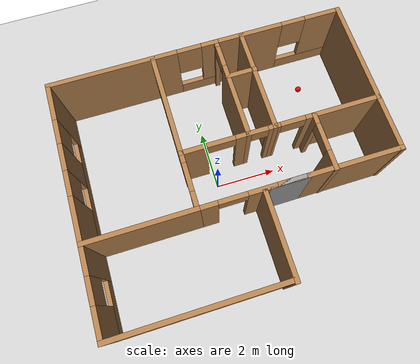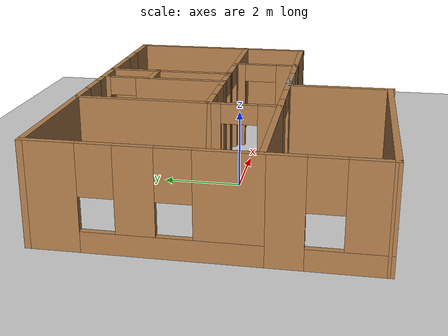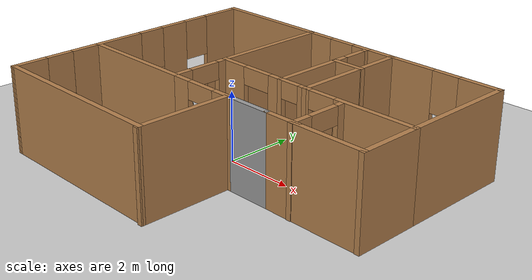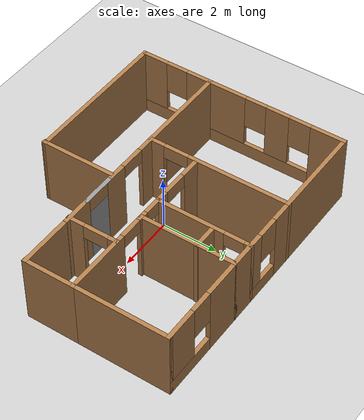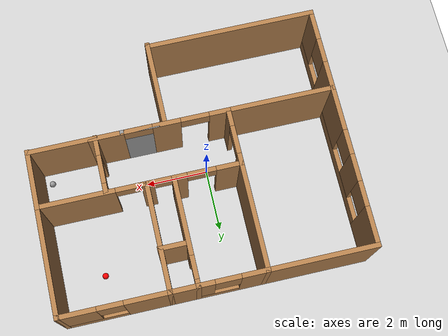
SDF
<sdf version="1.6">
 <world name="default">
  <model name="ground_plane">
   <static>1</static>
   <link name="link">
    <collision name="collision">
     <geometry><plane><normal>0 0 1</normal><size>100 100</size></plane></geometry>
     <surface><friction><ode><mu>100</mu><mu2>50</mu2></ode></friction></surface>
    </collision>
    <visual name="visual">
     <cast_shadows>0</cast_shadows>
     <geometry><plane><normal>0 0 1</normal><size>100 100</size></plane></geometry>
     <material>
      <script><uri>file://media/materials/scripts/gazebo.material</uri><name>Gazebo/Grey</name></script>
     </material>
    </visual>
   </link>
  </model>
  <model name="Building">
   <pose>0.53496 0.08529 0 0 -0 0</pose>
   <link name="Wall_0">
    <pose>-4.82496 1.34507 0 0 0 -1.5708</pose>
    <visual name="Wall_0_Visual_0">
     <pose>-1.98585 0 1.25 0 -0 0</pose>
     <geometry><box><size>1.27829 0.15 2.5</size></box></geometry>
     <material>
      <script><uri>file://media/materials/scripts/gazebo.material</uri><name>Gazebo/Wood</name></script>
      <ambient>1 1 1 1</ambient>
     </material>
     <meta><layer>0</layer></meta>
    </visual>
    <collision name="Wall_0_Collision_0">
     <geometry><box><size>1.27829 0.15 2.5</size></box></geometry>
     <pose>-1.98585 0 1.25 0 -0 0</pose>
    </collision>
    <visual name="Wall_0_Visual_1">
     <pose>0.639146 0 0.25 0 -0 0</pose>
     <geometry><box><size>3.97171 0.15 0.5</size></box></geometry>
     <material>
      <script><uri>file://media/materials/scripts/gazebo.material</uri><name>Gazebo/Wood</name></script>
      <ambient>1 1 1 1</ambient>
     </material>
     <meta><layer>0</layer></meta>
    </visual>
    <collision name="Wall_0_Collision_1">
     <geometry><box><size>3.97171 0.15 0.5</size></box></geometry>
     <pose>0.639146 0 0.25 0 -0 0</pose>
    </collision>
    <visual name="Wall_0_Visual_2">
     <pose>-0.109277 0 1.5 0 -0 0</pose>
     <geometry><box><size>0.874861 0.15 2</size></box></geometry>
     <material>
      <script><uri>file://media/materials/scripts/gazebo.material</uri><name>Gazebo/Wood</name></script>
      <ambient>1 1 1 1</ambient>
     </material>
     <meta><layer>0</layer></meta>
    </visual>
    <collision name="Wall_0_Collision_2">
     <geometry><box><size>0.874861 0.15 2</size></box></geometry>
     <pose>-0.109277 0 1.5 0 -0 0</pose>
    </collision>
    <visual name="Wall_0_Visual_3">
     <pose>1.87658 0 1.5 0 -0 0</pose>
     <geometry><box><size>1.49685 0.15 2</size></box></geometry>
     <material>
      <script><uri>file://media/materials/scripts/gazebo.material</uri><name>Gazebo/Wood</name></script>
      <ambient>1 1 1 1</ambient>
     </material>
     <meta><layer>0</layer></meta>
    </visual>
    <collision name="Wall_0_Collision_3">
     <geometry><box><size>1.49685 0.15 2</size></box></geometry>
     <pose>1.87658 0 1.5 0 -0 0</pose>
    </collision>
    <visual name="Wall_0_Visual_4">
     <pose>-0.946708 0 1.9 0 -0 0</pose>
     <geometry><box><size>0.8 0.15 1.2</size></box></geometry>
     <material>
      <script><uri>file://media/materials/scripts/gazebo.material</uri><name>Gazebo/Wood</name></script>
      <ambient>1 1 1 1</ambient>
     </material>
     <meta><layer>0</layer></meta>
    </visual>
    <collision name="Wall_0_Collision_4">
     <geometry><box><size>0.8 0.15 1.2</size></box></geometry>
     <pose>-0.946708 0 1.9 0 -0 0</pose>
    </collision>
    <visual name="Wall_0_Visual_5">
     <pose>0.728153 0 1.9 0 -0 0</pose>
     <geometry><box><size>0.8 0.15 1.2</size></box></geometry>
     <material>
      <script><uri>file://media/materials/scripts/gazebo.material</uri><name>Gazebo/Wood</name></script>
      <ambient>1 1 1 1</ambient>
     </material>
     <meta><layer>0</layer></meta>
    </visual>
    <collision name="Wall_0_Collision_5">
     <geometry><box><size>0.8 0.15 1.2</size></box></geometry>
     <pose>0.728153 0 1.9 0 -0 0</pose>
    </collision>
   </link>
   <link name="Wall_1">
    <collision name="Wall_1_Collision">
     <geometry><box><size>3.5 0.15 2.5</size></box></geometry>
     <pose>0 0 1.25 0 -0 0</pose>
    </collision>
    <visual name="Wall_1_Visual">
     <pose>0 0 1.25 0 -0 0</pose>
     <geometry><box><size>3.5 0.15 2.5</size></box></geometry>
     <material>
      <script><uri>file://media/materials/scripts/gazebo.material</uri><name>Gazebo/Wood</name></script>
      <ambient>1 1 1 1</ambient>
     </material>
     <meta><layer>0</layer></meta>
    </visual>
    <pose>-3.14996 -1.20493 0 0 -0 0</pose>
   </link>
   <link name="Wall_10">
    <collision name="Wall_10_Collision">
     <geometry><box><size>3.5 0.15 2.5</size></box></geometry>
     <pose>0 0 1.25 0 -0 0</pose>
    </collision>
    <visual name="Wall_10_Visual">
     <pose>0 0 1.25 0 -0 0</pose>
     <geometry><box><size>3.5 0.15 2.5</size></box></geometry>
     <material>
      <script><uri>file://media/materials/scripts/gazebo.material</uri><name>Gazebo/Wood</name></script>
      <ambient>1 1 1 1</ambient>
     </material>
     <meta><layer>0</layer></meta>
    </visual>
    <pose>1.47504 2.22007 0 0 0 -1.5708</pose>
   </link>
   <link name="Wall_11">
    <pose>1.05004 0.545074 0 0 -0 3.14159</pose>
    <visual name="Wall_11_Visual_0">
     <pose>-0.350457 0 1.25 0 -0 0</pose>
     <geometry><box><size>0.299085 0.15 2.5</size></box></geometry>
     <material>
      <script><uri>file://media/materials/scripts/gazebo.material</uri><name>Gazebo/Wood</name></script>
      <ambient>1 1 1 1</ambient>
     </material>
     <meta><layer>0</layer></meta>
    </visual>
    <collision name="Wall_11_Collision_0">
     <geometry><box><size>0.299085 0.15 2.5</size></box></geometry>
     <pose>-0.350457 0 1.25 0 -0 0</pose>
    </collision>
    <visual name="Wall_11_Visual_1">
     <pose>0.464543 0 1.25 0 -0 0</pose>
     <geometry><box><size>0.070915 0.15 2.5</size></box></geometry>
     <material>
      <script><uri>file://media/materials/scripts/gazebo.material</uri><name>Gazebo/Wood</name></script>
      <ambient>1 1 1 1</ambient>
     </material>
     <meta><layer>0</layer></meta>
    </visual>
    <collision name="Wall_11_Collision_1">
     <geometry><box><size>0.070915 0.15 2.5</size></box></geometry>
     <pose>0.464543 0 1.25 0 -0 0</pose>
    </collision>
    <visual name="Wall_11_Visual_2">
     <pose>0.114085 0 2.25 0 -0 0</pose>
     <geometry><box><size>0.63 0.15 0.5</size></box></geometry>
     <material>
      <script><uri>file://media/materials/scripts/gazebo.material</uri><name>Gazebo/Wood</name></script>
      <ambient>1 1 1 1</ambient>
     </material>
     <meta><layer>0</layer></meta>
    </visual>
    <collision name="Wall_11_Collision_2">
     <geometry><box><size>0.63 0.15 0.5</size></box></geometry>
     <pose>0.114085 0 2.25 0 -0 0</pose>
    </collision>
   </link>
   <link name="Wall_13">
    <pose>3.15004 3.89507 0 0 -0 0</pose>
    <visual name="Wall_13_Visual_0">
     <pose>-1.01972 0 1.25 0 -0 0</pose>
     <geometry><box><size>1.46055 0.15 2.5</size></box></geometry>
     <material>
      <script><uri>file://media/materials/scripts/gazebo.material</uri><name>Gazebo/Wood</name></script>
      <ambient>1 1 1 1</ambient>
     </material>
     <meta><layer>0</layer></meta>
    </visual>
    <collision name="Wall_13_Collision_0">
     <geometry><box><size>1.46055 0.15 2.5</size></box></geometry>
     <pose>-1.01972 0 1.25 0 -0 0</pose>
    </collision>
    <visual name="Wall_13_Visual_1">
     <pose>0.730276 0 0.25 0 -0 0</pose>
     <geometry><box><size>2.03945 0.15 0.5</size></box></geometry>
     <material>
      <script><uri>file://media/materials/scripts/gazebo.material</uri><name>Gazebo/Wood</name></script>
      <ambient>1 1 1 1</ambient>
     </material>
     <meta><layer>0</layer></meta>
    </visual>
    <collision name="Wall_13_Collision_1">
     <geometry><box><size>2.03945 0.15 0.5</size></box></geometry>
     <pose>0.730276 0 0.25 0 -0 0</pose>
    </collision>
    <visual name="Wall_13_Visual_2">
     <pose>1.13028 0 1.5 0 -0 0</pose>
     <geometry><box><size>1.23945 0.15 2</size></box></geometry>
     <material>
      <script><uri>file://media/materials/scripts/gazebo.material</uri><name>Gazebo/Wood</name></script>
      <ambient>1 1 1 1</ambient>
     </material>
     <meta><layer>0</layer></meta>
    </visual>
    <collision name="Wall_13_Collision_2">
     <geometry><box><size>1.23945 0.15 2</size></box></geometry>
     <pose>1.13028 0 1.5 0 -0 0</pose>
    </collision>
    <visual name="Wall_13_Visual_3">
     <pose>0.110551 0 1.9 0 -0 0</pose>
     <geometry><box><size>0.8 0.15 1.2</size></box></geometry>
     <material>
      <script><uri>file://media/materials/scripts/gazebo.material</uri><name>Gazebo/Wood</name></script>
      <ambient>1 1 1 1</ambient>
     </material>
     <meta><layer>0</layer></meta>
    </visual>
    <collision name="Wall_13_Collision_3">
     <geometry><box><size>0.8 0.15 1.2</size></box></geometry>
     <pose>0.110551 0 1.9 0 -0 0</pose>
    </collision>
   </link>
   <link name="Wall_14">
    <collision name="Wall_14_Collision">
     <geometry><box><size>3.5 0.15 2.5</size></box></geometry>
     <pose>0 0 1.25 0 -0 0</pose>
    </collision>
    <visual name="Wall_14_Visual">
     <pose>0 0 1.25 0 -0 0</pose>
     <geometry><box><size>3.5 0.15 2.5</size></box></geometry>
     <material>
      <script><uri>file://media/materials/scripts/gazebo.material</uri><name>Gazebo/Wood</name></script>
      <ambient>1 1 1 1</ambient>
     </material>
     <meta><layer>0</layer></meta>
    </visual>
    <pose>4.82505 2.22007 0 0 0 -1.5708</pose>
   </link>
   <link name="Wall_15">
    <pose>3.15004 0.545074 0 0 -0 3.14159</pose>
    <visual name="Wall_15_Visual_0">
     <pose>-0.519116 0 1.25 0 -0 0</pose>
     <geometry><box><size>2.46177 0.15 2.5</size></box></geometry>
     <material>
      <script><uri>file://media/materials/scripts/gazebo.material</uri><name>Gazebo/Wood</name></script>
      <ambient>1 1 1 1</ambient>
     </material>
     <meta><layer>0</layer></meta>
    </visual>
    <collision name="Wall_15_Collision_0">
     <geometry><box><size>2.46177 0.15 2.5</size></box></geometry>
     <pose>-0.519116 0 1.25 0 -0 0</pose>
    </collision>
    <visual name="Wall_15_Visual_1">
     <pose>1.63088 0 1.25 0 -0 0</pose>
     <geometry><box><size>0.238231 0.15 2.5</size></box></geometry>
     <material>
      <script><uri>file://media/materials/scripts/gazebo.material</uri><name>Gazebo/Wood</name></script>
      <ambient>1 1 1 1</ambient>
     </material>
     <meta><layer>0</layer></meta>
    </visual>
    <collision name="Wall_15_Collision_1">
     <geometry><box><size>0.238231 0.15 2.5</size></box></geometry>
     <pose>1.63088 0 1.25 0 -0 0</pose>
    </collision>
    <visual name="Wall_15_Visual_2">
     <pose>1.11177 0 2.25 0 -0 0</pose>
     <geometry><box><size>0.8 0.15 0.5</size></box></geometry>
     <material>
      <script><uri>file://media/materials/scripts/gazebo.material</uri><name>Gazebo/Wood</name></script>
      <ambient>1 1 1 1</ambient>
     </material>
     <meta><layer>0</layer></meta>
    </visual>
    <collision name="Wall_15_Collision_2">
     <geometry><box><size>0.8 0.15 0.5</size></box></geometry>
     <pose>1.11177 0 2.25 0 -0 0</pose>
    </collision>
   </link>
   <link name="Wall_17">
    <collision name="Wall_17_Collision">
     <geometry><box><size>1.9173 0.15 2.5</size></box></geometry>
     <pose>0 0 1.25 0 -0 0</pose>
    </collision>
    <visual name="Wall_17_Visual">
     <pose>0 0 1.25 0 -0 0</pose>
     <geometry><box><size>1.9173 0.15 2.5</size></box></geometry>
     <material>
      <script><uri>file://media/materials/scripts/gazebo.material</uri><name>Gazebo/Wood</name></script>
      <ambient>1 1 1 1</ambient>
     </material>
     <meta><layer>0</layer></meta>
    </visual>
    <pose>4.82505 -0.338575 0 0 0 -1.5708</pose>
   </link>
   <link name="Wall_18">
    <collision name="Wall_18_Collision">
     <geometry><box><size>2.25 0.15 2.5</size></box></geometry>
     <pose>0 0 1.25 0 -0 0</pose>
    </collision>
    <visual name="Wall_18_Visual">
     <pose>0 0 1.25 0 -0 0</pose>
     <geometry><box><size>2.25 0.15 2.5</size></box></geometry>
     <material>
      <script><uri>file://media/materials/scripts/gazebo.material</uri><name>Gazebo/Wood</name></script>
      <ambient>1 1 1 1</ambient>
     </material>
     <meta><layer>0</layer></meta>
    </visual>
    <pose>3.77504 -1.20701 0 0 -0 3.14159</pose>
   </link>
   <link name="Wall_19">
    <pose>2.72504 -0.338575 0 0 -0 1.5708</pose>
    <visual name="Wall_19_Visual_0">
     <pose>-0.635287 0 1.25 0 -0 0</pose>
     <geometry><box><size>0.646723 0.15 2.5</size></box></geometry>
     <material>
      <script><uri>file://media/materials/scripts/gazebo.material</uri><name>Gazebo/Wood</name></script>
      <ambient>1 1 1 1</ambient>
     </material>
     <meta><layer>0</layer></meta>
    </visual>
    <collision name="Wall_19_Collision_0">
     <geometry><box><size>0.646723 0.15 2.5</size></box></geometry>
     <pose>-0.635287 0 1.25 0 -0 0</pose>
    </collision>
    <visual name="Wall_19_Visual_1">
     <pose>0.773361 0 1.25 0 -0 0</pose>
     <geometry><box><size>0.370574 0.15 2.5</size></box></geometry>
     <material>
      <script><uri>file://media/materials/scripts/gazebo.material</uri><name>Gazebo/Wood</name></script>
      <ambient>1 1 1 1</ambient>
     </material>
     <meta><layer>0</layer></meta>
    </visual>
    <collision name="Wall_19_Collision_1">
     <geometry><box><size>0.370574 0.15 2.5</size></box></geometry>
     <pose>0.773361 0 1.25 0 -0 0</pose>
    </collision>
    <visual name="Wall_19_Visual_2">
     <pose>0.138074 0 2.25 0 -0 0</pose>
     <geometry><box><size>0.9 0.15 0.5</size></box></geometry>
     <material>
      <script><uri>file://media/materials/scripts/gazebo.material</uri><name>Gazebo/Wood</name></script>
      <ambient>1 1 1 1</ambient>
     </material>
     <meta><layer>0</layer></meta>
    </visual>
    <collision name="Wall_19_Collision_2">
     <geometry><box><size>0.9 0.15 0.5</size></box></geometry>
     <pose>0.138074 0 2.25 0 -0 0</pose>
    </collision>
   </link>
   <link name="Wall_2">
    <pose>-1.47496 1.34507 0 0 -0 1.5708</pose>
    <visual name="Wall_2_Visual_0">
     <pose>-2.32062 0 1.25 0 -0 0</pose>
     <geometry><box><size>0.608752 0.15 2.5</size></box></geometry>
     <material>
      <script><uri>file://media/materials/scripts/gazebo.material</uri><name>Gazebo/Wood</name></script>
      <ambient>1 1 1 1</ambient>
     </material>
     <meta><layer>0</layer></meta>
    </visual>
    <collision name="Wall_2_Collision_0">
     <geometry><box><size>0.608752 0.15 2.5</size></box></geometry>
     <pose>-2.32062 0 1.25 0 -0 0</pose>
    </collision>
    <visual name="Wall_2_Visual_1">
     <pose>0.754376 0 1.25 0 -0 0</pose>
     <geometry><box><size>3.74125 0.15 2.5</size></box></geometry>
     <material>
      <script><uri>file://media/materials/scripts/gazebo.material</uri><name>Gazebo/Wood</name></script>
      <ambient>1 1 1 1</ambient>
     </material>
     <meta><layer>0</layer></meta>
    </visual>
    <collision name="Wall_2_Collision_1">
     <geometry><box><size>3.74125 0.15 2.5</size></box></geometry>
     <pose>0.754376 0 1.25 0 -0 0</pose>
    </collision>
    <visual name="Wall_2_Visual_2">
     <pose>-1.56625 0 2.25 0 -0 0</pose>
     <geometry><box><size>0.9 0.15 0.5</size></box></geometry>
     <material>
      <script><uri>file://media/materials/scripts/gazebo.material</uri><name>Gazebo/Wood</name></script>
      <ambient>1 1 1 1</ambient>
     </material>
     <meta><layer>0</layer></meta>
    </visual>
    <collision name="Wall_2_Collision_2">
     <geometry><box><size>0.9 0.15 0.5</size></box></geometry>
     <pose>-1.56625 0 2.25 0 -0 0</pose>
    </collision>
   </link>
   <link name="Wall_21">
    <pose>0.700045 -1.20493 0 0 -0 0</pose>
    <visual name="Wall_21_Visual_0">
     <pose>-1.90742 0 1.25 0 -0 0</pose>
     <geometry><box><size>0.685162 0.15 2.5</size></box></geometry>
     <material>
      <script><uri>file://media/materials/scripts/gazebo.material</uri><name>Gazebo/Wood</name></script>
      <ambient>1 1 1 1</ambient>
     </material>
     <meta><layer>0</layer></meta>
    </visual>
    <collision name="Wall_21_Collision_0">
     <geometry><box><size>0.685162 0.15 2.5</size></box></geometry>
     <pose>-1.90742 0 1.25 0 -0 0</pose>
    </collision>
    <visual name="Wall_21_Visual_1">
     <pose>-0.217374 0 1.25 0 -0 0</pose>
     <geometry><box><size>0.894928 0.15 2.5</size></box></geometry>
     <material>
      <script><uri>file://media/materials/scripts/gazebo.material</uri><name>Gazebo/Wood</name></script>
      <ambient>1 1 1 1</ambient>
     </material>
     <meta><layer>0</layer></meta>
    </visual>
    <collision name="Wall_21_Collision_1">
     <geometry><box><size>0.894928 0.15 2.5</size></box></geometry>
     <pose>-0.217374 0 1.25 0 -0 0</pose>
    </collision>
    <visual name="Wall_21_Visual_2">
     <pose>1.69005 0 1.25 0 -0 0</pose>
     <geometry><box><size>1.11991 0.15 2.5</size></box></geometry>
     <material>
      <script><uri>file://media/materials/scripts/gazebo.material</uri><name>Gazebo/Wood</name></script>
      <ambient>1 1 1 1</ambient>
     </material>
     <meta><layer>0</layer></meta>
    </visual>
    <collision name="Wall_21_Collision_2">
     <geometry><box><size>1.11991 0.15 2.5</size></box></geometry>
     <pose>1.69005 0 1.25 0 -0 0</pose>
    </collision>
    <visual name="Wall_21_Visual_3">
     <pose>-1.11484 0 2.25 0 -0 0</pose>
     <geometry><box><size>0.9 0.15 0.5</size></box></geometry>
     <material>
      <script><uri>file://media/materials/scripts/gazebo.material</uri><name>Gazebo/Wood</name></script>
      <ambient>1 1 1 1</ambient>
     </material>
     <meta><layer>0</layer></meta>
    </visual>
    <collision name="Wall_21_Collision_3">
     <geometry><box><size>0.9 0.15 0.5</size></box></geometry>
     <pose>-1.11484 0 2.25 0 -0 0</pose>
    </collision>
    <visual name="Wall_21_Visual_4">
     <pose>0.68009 0 2.25 0 -0 0</pose>
     <geometry><box><size>0.9 0.15 0.5</size></box></geometry>
     <material>
      <script><uri>file://media/materials/scripts/gazebo.material</uri><name>Gazebo/Wood</name></script>
      <ambient>1 1 1 1</ambient>
     </material>
     <meta><layer>0</layer></meta>
    </visual>
    <collision name="Wall_21_Collision_4">
     <geometry><box><size>0.9 0.15 0.5</size></box></geometry>
     <pose>0.68009 0 2.25 0 -0 0</pose>
    </collision>
   </link>
   <link name="Wall_24">
    <pose>-4.82496 -2.52993 0 0 0 -1.5708</pose>
    <visual name="Wall_24_Visual_0">
     <pose>-0.914873 0 1.25 0 -0 0</pose>
     <geometry><box><size>0.970255 0.15 2.5</size></box></geometry>
     <material>
      <script><uri>file://media/materials/scripts/gazebo.material</uri><name>Gazebo/Wood</name></script>
      <ambient>1 1 1 1</ambient>
     </material>
     <meta><layer>0</layer></meta>
    </visual>
    <collision name="Wall_24_Collision_0">
     <geometry><box><size>0.970255 0.15 2.5</size></box></geometry>
     <pose>-0.914873 0 1.25 0 -0 0</pose>
    </collision>
    <visual name="Wall_24_Visual_1">
     <pose>0.485127 0 0.25 0 -0 0</pose>
     <geometry><box><size>1.82974 0.15 0.5</size></box></geometry>
     <material>
      <script><uri>file://media/materials/scripts/gazebo.material</uri><name>Gazebo/Wood</name></script>
      <ambient>1 1 1 1</ambient>
     </material>
     <meta><layer>0</layer></meta>
    </visual>
    <collision name="Wall_24_Collision_1">
     <geometry><box><size>1.82974 0.15 0.5</size></box></geometry>
     <pose>0.485127 0 0.25 0 -0 0</pose>
    </collision>
    <visual name="Wall_24_Visual_2">
     <pose>0.885127 0 1.5 0 -0 0</pose>
     <geometry><box><size>1.02974 0.15 2</size></box></geometry>
     <material>
      <script><uri>file://media/materials/scripts/gazebo.material</uri><name>Gazebo/Wood</name></script>
      <ambient>1 1 1 1</ambient>
     </material>
     <meta><layer>0</layer></meta>
    </visual>
    <collision name="Wall_24_Collision_2">
     <geometry><box><size>1.02974 0.15 2</size></box></geometry>
     <pose>0.885127 0 1.5 0 -0 0</pose>
    </collision>
    <visual name="Wall_24_Visual_3">
     <pose>-0.029745 0 1.9 0 -0 0</pose>
     <geometry><box><size>0.8 0.15 1.2</size></box></geometry>
     <material>
      <script><uri>file://media/materials/scripts/gazebo.material</uri><name>Gazebo/Wood</name></script>
      <ambient>1 1 1 1</ambient>
     </material>
     <meta><layer>0</layer></meta>
    </visual>
    <collision name="Wall_24_Collision_3">
     <geometry><box><size>0.8 0.15 1.2</size></box></geometry>
     <pose>-0.029745 0 1.9 0 -0 0</pose>
    </collision>
   </link>
   <link name="Wall_26">
    <collision name="Wall_26_Collision">
     <geometry><box><size>5.50383 0.15 2.5</size></box></geometry>
     <pose>0 0 1.25 0 -0 0</pose>
    </collision>
    <visual name="Wall_26_Visual">
     <pose>0 0 1.25 0 -0 0</pose>
     <geometry><box><size>5.50383 0.15 2.5</size></box></geometry>
     <material>
      <script><uri>file://media/materials/scripts/gazebo.material</uri><name>Gazebo/Wood</name></script>
      <ambient>1 1 1 1</ambient>
     </material>
     <meta><layer>0</layer></meta>
    </visual>
    <pose>-2.14804 -3.85174 0 0 -0 0.001191</pose>
   </link>
   <link name="Wall_27">
    <collision name="Wall_27_Collision">
     <geometry><box><size>2.75 0.15 2.5</size></box></geometry>
     <pose>0 0 1.25 0 -0 0</pose>
    </collision>
    <visual name="Wall_27_Visual">
     <pose>0 0 1.25 0 -0 0</pose>
     <geometry><box><size>2.75 0.15 2.5</size></box></geometry>
     <material>
      <script><uri>file://media/materials/scripts/gazebo.material</uri><name>Gazebo/Wood</name></script>
      <ambient>1 1 1 1</ambient>
     </material>
     <meta><layer>0</layer></meta>
    </visual>
    <pose>0.52887 -2.59507 0 0 -0 1.5708</pose>
   </link>
   <link name="Wall_29">
    <collision name="Wall_29_Collision">
     <geometry><box><size>1 0.15 2.5</size></box></geometry>
     <pose>0 0 1.25 0 -0 0</pose>
    </collision>
    <visual name="Wall_29_Visual">
     <pose>0 0 1.25 0 -0 0</pose>
     <geometry><box><size>1 0.15 2.5</size></box></geometry>
     <material>
      <script><uri>file://media/materials/scripts/gazebo.material</uri><name>Gazebo/Wood</name></script>
      <ambient>1 1 1 1</ambient>
     </material>
     <meta><layer>0</layer></meta>
    </visual>
    <pose>1.07353 2.57976 0 0 -0 0</pose>
   </link>
   <link name="Wall_3">
    <collision name="Wall_3_Collision">
     <geometry><box><size>3.5 0.15 2.5</size></box></geometry>
     <pose>0 0 1.25 0 -0 0</pose>
    </collision>
    <visual name="Wall_3_Visual">
     <pose>0 0 1.25 0 -0 0</pose>
     <geometry><box><size>3.5 0.15 2.5</size></box></geometry>
     <material>
      <script><uri>file://media/materials/scripts/gazebo.material</uri><name>Gazebo/Wood</name></script>
      <ambient>1 1 1 1</ambient>
     </material>
     <meta><layer>0</layer></meta>
    </visual>
    <pose>-3.14996 3.89507 0 0 -0 3.14159</pose>
   </link>
   <link name="Wall_5">
    <pose>-0.424956 3.89507 0 0 -0 0</pose>
    <visual name="Wall_5_Visual_0">
     <pose>-0.687633 0 1.25 0 -0 0</pose>
     <geometry><box><size>0.874734 0.15 2.5</size></box></geometry>
     <material>
      <script><uri>file://media/materials/scripts/gazebo.material</uri><name>Gazebo/Wood</name></script>
      <ambient>1 1 1 1</ambient>
     </material>
     <meta><layer>0</layer></meta>
    </visual>
    <collision name="Wall_5_Collision_0">
     <geometry><box><size>0.874734 0.15 2.5</size></box></geometry>
     <pose>-0.687633 0 1.25 0 -0 0</pose>
    </collision>
    <visual name="Wall_5_Visual_1">
     <pose>0.437367 0 0.25 0 -0 0</pose>
     <geometry><box><size>1.37527 0.15 0.5</size></box></geometry>
     <material>
      <script><uri>file://media/materials/scripts/gazebo.material</uri><name>Gazebo/Wood</name></script>
      <ambient>1 1 1 1</ambient>
     </material>
     <meta><layer>0</layer></meta>
    </visual>
    <collision name="Wall_5_Collision_1">
     <geometry><box><size>1.37527 0.15 0.5</size></box></geometry>
     <pose>0.437367 0 0.25 0 -0 0</pose>
    </collision>
    <visual name="Wall_5_Visual_2">
     <pose>0.837367 0 1.5 0 -0 0</pose>
     <geometry><box><size>0.575266 0.15 2</size></box></geometry>
     <material>
      <script><uri>file://media/materials/scripts/gazebo.material</uri><name>Gazebo/Wood</name></script>
      <ambient>1 1 1 1</ambient>
     </material>
     <meta><layer>0</layer></meta>
    </visual>
    <collision name="Wall_5_Collision_2">
     <geometry><box><size>0.575266 0.15 2</size></box></geometry>
     <pose>0.837367 0 1.5 0 -0 0</pose>
    </collision>
    <visual name="Wall_5_Visual_3">
     <pose>0.149734 0 1.9 0 -0 0</pose>
     <geometry><box><size>0.8 0.15 1.2</size></box></geometry>
     <material>
      <script><uri>file://media/materials/scripts/gazebo.material</uri><name>Gazebo/Wood</name></script>
      <ambient>1 1 1 1</ambient>
     </material>
     <meta><layer>0</layer></meta>
    </visual>
    <collision name="Wall_5_Collision_3">
     <geometry><box><size>0.8 0.15 1.2</size></box></geometry>
     <pose>0.149734 0 1.9 0 -0 0</pose>
    </collision>
   </link>
   <link name="Wall_6">
    <pose>0.625044 2.22007 0 0 0 -1.5708</pose>
    <visual name="Wall_6_Visual_0">
     <pose>-1.611 0 1.25 0 -0 0</pose>
     <geometry><box><size>0.278001 0.15 2.5</size></box></geometry>
     <material>
      <script><uri>file://media/materials/scripts/gazebo.material</uri><name>Gazebo/Wood</name></script>
      <ambient>1 1 1 1</ambient>
     </material>
     <meta><layer>0</layer></meta>
    </visual>
    <collision name="Wall_6_Collision_0">
     <geometry><box><size>0.278001 0.15 2.5</size></box></geometry>
     <pose>-1.611 0 1.25 0 -0 0</pose>
    </collision>
    <visual name="Wall_6_Visual_1">
     <pose>0.497696 0 1.25 0 -0 0</pose>
     <geometry><box><size>2.50461 0.15 2.5</size></box></geometry>
     <material>
      <script><uri>file://media/materials/scripts/gazebo.material</uri><name>Gazebo/Wood</name></script>
      <ambient>1 1 1 1</ambient>
     </material>
     <meta><layer>0</layer></meta>
    </visual>
    <collision name="Wall_6_Collision_1">
     <geometry><box><size>2.50461 0.15 2.5</size></box></geometry>
     <pose>0.497696 0 1.25 0 -0 0</pose>
    </collision>
    <visual name="Wall_6_Visual_2">
     <pose>-1.1133 0 2.25 0 -0 0</pose>
     <geometry><box><size>0.717391 0.15 0.5</size></box></geometry>
     <material>
      <script><uri>file://media/materials/scripts/gazebo.material</uri><name>Gazebo/Wood</name></script>
      <ambient>1 1 1 1</ambient>
     </material>
     <meta><layer>0</layer></meta>
    </visual>
    <collision name="Wall_6_Collision_2">
     <geometry><box><size>0.717391 0.15 0.5</size></box></geometry>
     <pose>-1.1133 0 2.25 0 -0 0</pose>
    </collision>
   </link>
   <link name="Wall_7">
    <pose>-0.424956 0.545074 0 0 -0 3.14159</pose>
    <visual name="Wall_7_Visual_0">
     <pose>-0.883981 0 1.25 0 -0 0</pose>
     <geometry><box><size>0.482037 0.15 2.5</size></box></geometry>
     <material>
      <script><uri>file://media/materials/scripts/gazebo.material</uri><name>Gazebo/Wood</name></script>
      <ambient>1 1 1 1</ambient>
     </material>
     <meta><layer>0</layer></meta>
    </visual>
    <collision name="Wall_7_Collision_0">
     <geometry><box><size>0.482037 0.15 2.5</size></box></geometry>
     <pose>-0.883981 0 1.25 0 -0 0</pose>
    </collision>
    <visual name="Wall_7_Visual_1">
     <pose>0.691019 0 1.25 0 -0 0</pose>
     <geometry><box><size>0.867963 0.15 2.5</size></box></geometry>
     <material>
      <script><uri>file://media/materials/scripts/gazebo.material</uri><name>Gazebo/Wood</name></script>
      <ambient>1 1 1 1</ambient>
     </material>
     <meta><layer>0</layer></meta>
    </visual>
    <collision name="Wall_7_Collision_1">
     <geometry><box><size>0.867963 0.15 2.5</size></box></geometry>
     <pose>0.691019 0 1.25 0 -0 0</pose>
    </collision>
    <visual name="Wall_7_Visual_2">
     <pose>-0.192963 0 2.25 0 -0 0</pose>
     <geometry><box><size>0.9 0.15 0.5</size></box></geometry>
     <material>
      <script><uri>file://media/materials/scripts/gazebo.material</uri><name>Gazebo/Wood</name></script>
      <ambient>1 1 1 1</ambient>
     </material>
     <meta><layer>0</layer></meta>
    </visual>
    <collision name="Wall_7_Collision_2">
     <geometry><box><size>0.9 0.15 0.5</size></box></geometry>
     <pose>-0.192963 0 2.25 0 -0 0</pose>
    </collision>
   </link>
   <link name="Wall_9">
    <collision name="Wall_9_Collision">
     <geometry><box><size>1 0.15 2.5</size></box></geometry>
     <pose>0 0 1.25 0 -0 0</pose>
    </collision>
    <visual name="Wall_9_Visual">
     <pose>0 0 1.25 0 -0 0</pose>
     <geometry><box><size>1 0.15 2.5</size></box></geometry>
     <material>
      <script><uri>file://media/materials/scripts/gazebo.material</uri><name>Gazebo/Wood</name></script>
      <ambient>1 1 1 1</ambient>
     </material>
     <meta><layer>0</layer></meta>
    </visual>
    <pose>1.05004 3.89507 0 0 -0 0</pose>
   </link>
   <static>1</static>
  </model>
  <model name="Untitled">
   <pose>1.86 -1.12 0 0 -0 0</pose>
   <link name="Wall_3">
    <collision name="Wall_3_Collision">
     <geometry><box><size>1.25 0.15 2.5</size></box></geometry>
     <pose>0 0 1.25 0 -0 0</pose>
    </collision>
    <visual name="Wall_3_Visual">
     <pose>0 0 1.25 0 -0 0</pose>
     <geometry><box><size>1.25 0.15 2.5</size></box></geometry>
     <material>
      <script><uri>file://media/materials/scripts/gazebo.material</uri><name>Gazebo/Grey</name></script>
      <ambient>1 1 1 1</ambient>
     </material>
     <meta><layer>0</layer></meta>
    </visual>
   </link>
   <static>1</static>
  </model>
  <model name="my_ball">
   <link name="link_0">
    <inertial>
     <mass>1</mass>
     <inertia><ixx>0.1</ixx><ixy>0</ixy><ixz>0</ixz><iyy>0.1</iyy><iyz>0</iyz><izz>0.1</izz></inertia>
    </inertial>
    <visual name="visual">
     <geometry><sphere><radius>0.1</radius></sphere></geometry>
     <material>
      <lighting>1</lighting>
      <script><uri>file://media/materials/scripts/gazebo.material</uri><name>Gazebo/Grey</name></script>
      <shader type="pixel"><normal_map>__default__</normal_map></shader>
      <ambient>1 1 1 1</ambient>
      <diffuse>1 1 1 1</diffuse>
      <specular>1 1 1 1</specular>
      <emissive>0 0 0 1</emissive>
     </material>
    </visual>
    <collision name="collision">
     <geometry><sphere><radius>0.1</radius></sphere></geometry>
     <surface>
      <friction>
       <ode><mu>1</mu><mu2>1</mu2><fdir1>0 0 0</fdir1><slip1>0</slip1><slip2>0</slip2></ode>
       <torsional>
        <coefficient>1</coefficient>
        <patch_radius>0</patch_radius>
        <surface_radius>0</surface_radius>
        <use_patch_radius>1</use_patch_radius>
        <ode><slip>0</slip></ode>
       </torsional>
      </friction>
      <bounce><restitution_coefficient>0</restitution_coefficient><threshold>1e+06</threshold></bounce>
      <contact>
       <collide_without_contact>0</collide_without_contact>
       <collide_without_contact_bitmask>1</collide_without_contact_bitmask>
       <collide_bitmask>1</collide_bitmask>
       <ode>
        <soft_cfm>0</soft_cfm>
        <soft_erp>0.2</soft_erp>
        <kp>1e+13</kp>
        <kd>1</kd>
        <max_vel>0.01</max_vel>
        <min_depth>0</min_depth>
       </ode>
       <bullet>
        <split_impulse>1</split_impulse>
        <split_impulse_penetration_threshold>-0.01</split_impulse_penetration_threshold>
        <soft_cfm>0</soft_cfm>
        <soft_erp>0.2</soft_erp>
        <kp>1e+13</kp>
        <kd>1</kd>
       </bullet>
      </contact>
     </surface>
    </collision>
   </link>
   <static>0</static>
   <pose>5.05569 -0.693558 0.1 0 -0 0</pose>
  </model>
  <model name="red_ball">
   <link name="link_0">
    <inertial>
     <mass>1</mass>
     <inertia><ixx>0.1</ixx><ixy>0</ixy><ixz>0</ixz><iyy>0.1</iyy><iyz>0</iyz><izz>0.1</izz></inertia>
    </inertial>
    <visual name="visual">
     <geometry><sphere><radius>0.1</radius></sphere></geometry>
     <material>
      <lighting>1</lighting>
      <script><uri>file://media/materials/scripts/gazebo.material</uri><name>Gazebo/Grey</name></script>
      <shader type="pixel"><normal_map>__default__</normal_map></shader>
      <ambient>1 0 0 1</ambient>
      <diffuse>1 0 0 1</diffuse>
      <specular>1 0 0 1</specular>
      <emissive>1 0 0 1</emissive>
     </material>
    </visual>
    <collision name="collision">
     <geometry><sphere><radius>0.1</radius></sphere></geometry>
     <surface>
      <friction>
       <ode><mu>1</mu><mu2>1</mu2><fdir1>0 0 0</fdir1><slip1>0</slip1><slip2>0</slip2></ode>
       <torsional>
        <coefficient>1</coefficient>
        <patch_radius>0</patch_radius>
        <surface_radius>0</surface_radius>
        <use_patch_radius>1</use_patch_radius>
        <ode><slip>0</slip></ode>
       </torsional>
      </friction>
      <bounce><restitution_coefficient>0</restitution_coefficient><threshold>1e+06</threshold></bounce>
      <contact>
       <collide_without_contact>0</collide_without_contact>
       <collide_without_contact_bitmask>1</collide_without_contact_bitmask>
       <collide_bitmask>1</collide_bitmask>
       <ode>
        <soft_cfm>0</soft_cfm>
        <soft_erp>0.2</soft_erp>
        <kp>1e+13</kp>
        <kd>1</kd>
        <max_vel>0.01</max_vel>
        <min_depth>0</min_depth>
       </ode>
       <bullet>
        <split_impulse>1</split_impulse>
        <split_impulse_penetration_threshold>-0.01</split_impulse_penetration_threshold>
        <soft_cfm>0</soft_cfm>
        <soft_erp>0.2</soft_erp>
        <kp>1e+13</kp>
        <kd>1</kd>
       </bullet>
      </contact>
     </surface>
    </collision>
   </link>
   <static>0</static>
   <pose>3.92589 2.69485 0.09966 0 -0 0</pose>
  </model>
 </world>
</sdf>
